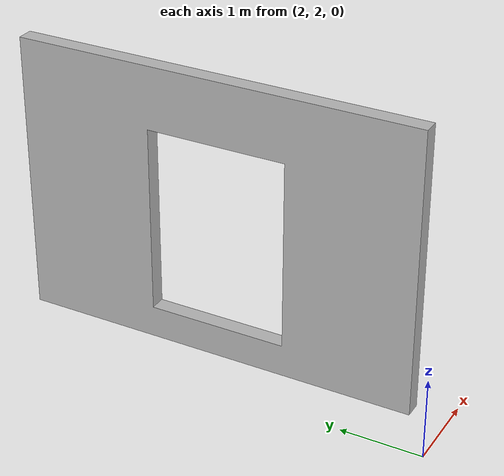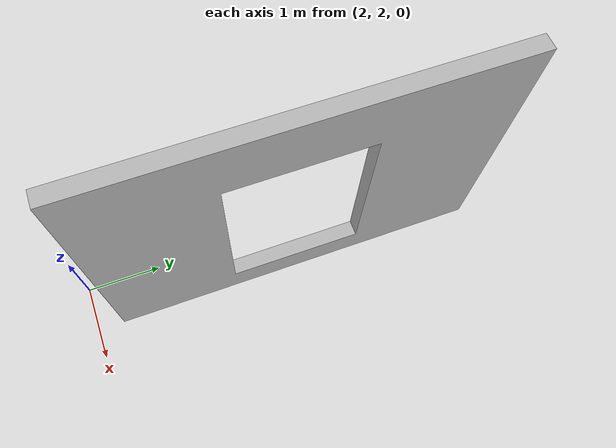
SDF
<?xml version="1.0"?>
<sdf version="1.5">
    <model name="house_wall_4">
        <static>true</static>
        <link name="link">
            <collision name="collision_wall">
                <pose>0 0 0.05 0 0 0</pose>
                <geometry>
                    <mesh>
                        <uri>model://house_scene_2_wall_4/meshes/sc4qr.dae</uri>
                    </mesh>
                </geometry>
            </collision>
            <visual name="visual_walls">
              <pose>0 0 0.05 0 0 0</pose>
              <geometry>
              <mesh>
                 <uri>model://house_scene_2_wall_4/meshes/sc4qr.dae</uri>
              </mesh>
              </geometry>
             </visual>
        </link>
    </model>
</sdf>
